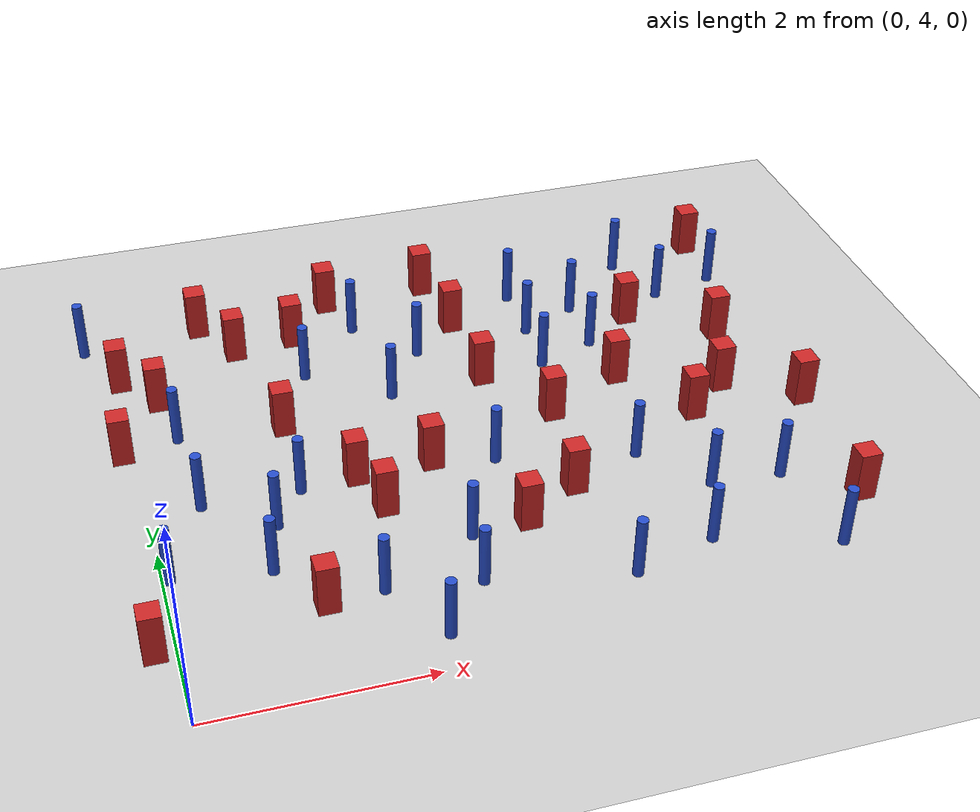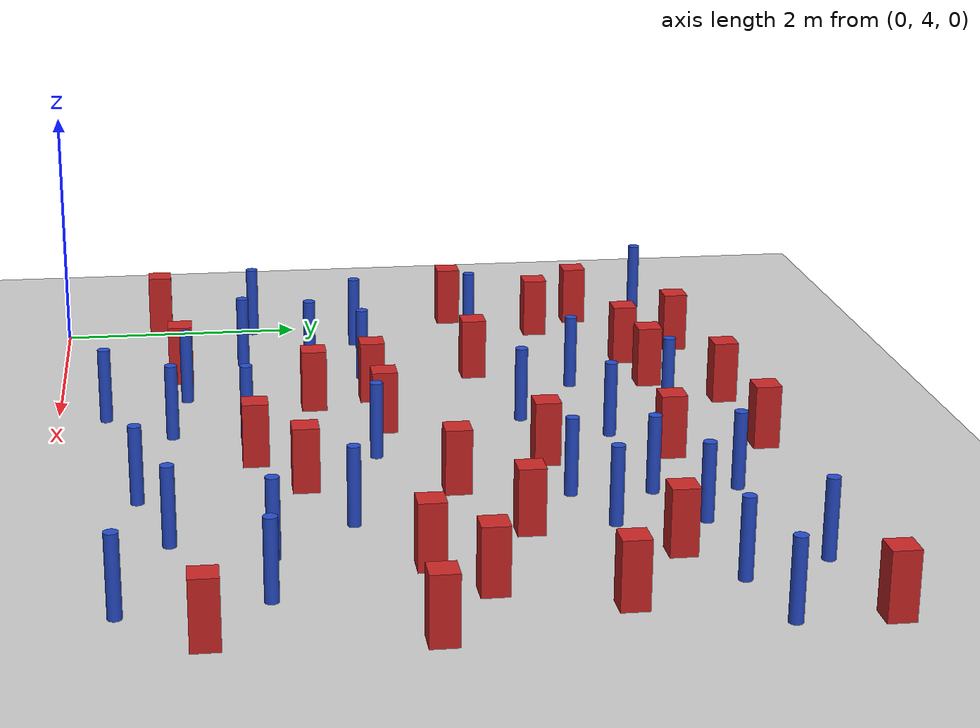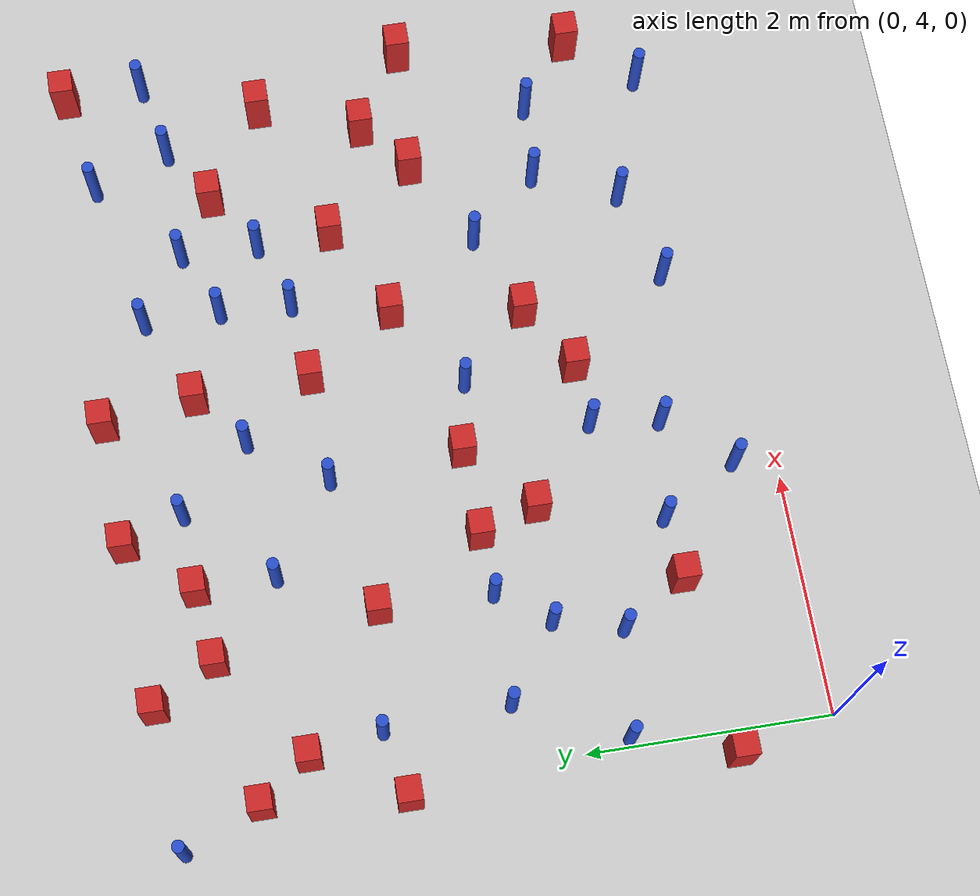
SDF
<sdf version="1.6">
 <world name="default">
  <model name="ground_plane">
   <static>1</static>
   <link name="link">
    <collision name="collision">
     <geometry><plane><normal>0 0 1</normal><size>100 100</size></plane></geometry>
     <surface><friction><ode><mu>100</mu><mu2>50</mu2></ode></friction></surface>
    </collision>
    <visual name="visual">
     <cast_shadows>0</cast_shadows>
     <geometry><plane><normal>0 0 1</normal><size>100 100</size></plane></geometry>
     <material>
      <ambient>1.0 1.0 1.0 1.0</ambient>
      <diffuse>0.8 0.8 0.8 1.0</diffuse>
      <specular>0.01 0.01 0.01 1.000000</specular>
     </material>
    </visual>
   </link>
  </model>
  <model name="pole_obstacle2">
   <static>true</static>
   <pose>4.96777169325 5.56656059829 2.88873142074e-08 -9.90536690842e-09 4.60219948965e-07 -1.20965994976e-07</pose>
   <link name="link">
    <pose>0 0 0.3 0 -0 0</pose>
    <inertial>
     <mass>1</mass>
     <inertia><ixx>0.145833</ixx><ixy>0</ixy><ixz>0</ixz><iyy>0.145833</iyy><iyz>0</iyz><izz>0.125</izz></inertia>
    </inertial>
    <collision name="collision">
     <geometry><cylinder><radius>0.05</radius><length>.6</length></cylinder></geometry>
    </collision>
    <visual name="visual">
     <geometry><cylinder><radius>0.05</radius><length>.6</length></cylinder></geometry>
     <material>
      <script><name>Gazebo/Blue</name><uri>file://media/materials/scripts/gazebo.material</uri></script>
     </material>
    </visual>
   </link>
  </model>
  <model name="pole_obstacle6">
   <static>true</static>
   <pose>1.37009122561 6.50611546226 2.88873142074e-08 -9.90536689852e-09 4.60219948989e-07 -1.2096599496e-07</pose>
   <link name="link">
    <pose>0 0 0.3 0 -0 0</pose>
    <inertial>
     <mass>1</mass>
     <inertia><ixx>0.145833</ixx><ixy>0</ixy><ixz>0</ixz><iyy>0.145833</iyy><iyz>0</iyz><izz>0.125</izz></inertia>
    </inertial>
    <collision name="collision">
     <geometry><cylinder><radius>0.05</radius><length>.6</length></cylinder></geometry>
    </collision>
    <visual name="visual">
     <geometry><cylinder><radius>0.05</radius><length>.6</length></cylinder></geometry>
     <material>
      <script><name>Gazebo/Blue</name><uri>file://media/materials/scripts/gazebo.material</uri></script>
     </material>
    </visual>
   </link>
  </model>
  <model name="square_post_obstacle16">
   <static>true</static>
   <pose>3.91685369579 6.9639876529 8.22691968438e-08 7.2212513382e-06 -7.54495500217e-07 2.29674213826e-05</pose>
   <link name="link">
    <pose>0 0 0.25 0 -0 0</pose>
    <inertial>
     <mass>100</mass>
     <inertia>
      <ixx>0.166667</ixx>
      <ixy>0</ixy>
      <ixz>0</ixz>
      <iyy>0.166667</iyy>
      <iyz>0</iyz>
      <izz>0.166667</izz>
     </inertia>
    </inertial>
    <collision name="collision"><geometry><box><size>.2 .2 .5</size></box></geometry></collision>
    <visual name="visual">
     <geometry><box><size>.2 .2 .5</size></box></geometry>
     <material>
      <script><name>Gazebo/Red</name><uri>file://media/materials/scripts/gazebo.material</uri></script>
     </material>
    </visual>
   </link>
  </model>
  <model name="square_post_obstacle23">
   <static>true</static>
   <pose>-0.119241990088 7.42786433409 8.22691968438e-08 7.2212513382e-06 -7.54495500217e-07 2.29674213826e-05</pose>
   <link name="link">
    <pose>0 0 0.25 0 -0 0</pose>
    <inertial>
     <mass>100</mass>
     <inertia>
      <ixx>0.166667</ixx>
      <ixy>0</ixy>
      <ixz>0</ixz>
      <iyy>0.166667</iyy>
      <iyz>0</iyz>
      <izz>0.166667</izz>
     </inertia>
    </inertial>
    <collision name="collision"><geometry><box><size>.2 .2 .5</size></box></geometry></collision>
    <visual name="visual">
     <geometry><box><size>.2 .2 .5</size></box></geometry>
     <material>
      <script><name>Gazebo/Red</name><uri>file://media/materials/scripts/gazebo.material</uri></script>
     </material>
    </visual>
   </link>
  </model>
  <model name="square_post_obstacle30">
   <static>true</static>
   <pose>1.39671716725 7.4428114507 8.22691968438e-08 7.2212513382e-06 -7.54495500217e-07 2.29674213826e-05</pose>
   <link name="link">
    <pose>0 0 0.25 0 -0 0</pose>
    <inertial>
     <mass>100</mass>
     <inertia>
      <ixx>0.166667</ixx>
      <ixy>0</ixy>
      <ixz>0</ixz>
      <iyy>0.166667</iyy>
      <iyz>0</iyz>
      <izz>0.166667</izz>
     </inertia>
    </inertial>
    <collision name="collision"><geometry><box><size>.2 .2 .5</size></box></geometry></collision>
    <visual name="visual">
     <geometry><box><size>.2 .2 .5</size></box></geometry>
     <material>
      <script><name>Gazebo/Red</name><uri>file://media/materials/scripts/gazebo.material</uri></script>
     </material>
    </visual>
   </link>
  </model>
  <model name="pole_obstacle25">
   <static>true</static>
   <pose>6.31843036525 8.79264927936 2.88873142074e-08 -9.9053668967e-09 4.60219948993e-07 -1.20965994957e-07</pose>
   <link name="link">
    <pose>0 0 0.3 0 -0 0</pose>
    <inertial>
     <mass>1</mass>
     <inertia><ixx>0.145833</ixx><ixy>0</ixy><ixz>0</ixz><iyy>0.145833</iyy><iyz>0</iyz><izz>0.125</izz></inertia>
    </inertial>
    <collision name="collision">
     <geometry><cylinder><radius>0.05</radius><length>.6</length></cylinder></geometry>
    </collision>
    <visual name="visual">
     <geometry><cylinder><radius>0.05</radius><length>.6</length></cylinder></geometry>
     <material>
      <script><name>Gazebo/Blue</name><uri>file://media/materials/scripts/gazebo.material</uri></script>
     </material>
    </visual>
   </link>
  </model>
  <model name="pole_obstacle26">
   <static>true</static>
   <pose>2.16247874129 4.37946165837 2.88873142074e-08 -9.90536689859e-09 4.60219948989e-07 -1.20965994961e-07</pose>
   <link name="link">
    <pose>0 0 0.3 0 -0 0</pose>
    <inertial>
     <mass>1</mass>
     <inertia><ixx>0.145833</ixx><ixy>0</ixy><ixz>0</ixz><iyy>0.145833</iyy><iyz>0</iyz><izz>0.125</izz></inertia>
    </inertial>
    <collision name="collision">
     <geometry><cylinder><radius>0.05</radius><length>.6</length></cylinder></geometry>
    </collision>
    <visual name="visual">
     <geometry><cylinder><radius>0.05</radius><length>.6</length></cylinder></geometry>
     <material>
      <script><name>Gazebo/Blue</name><uri>file://media/materials/scripts/gazebo.material</uri></script>
     </material>
    </visual>
   </link>
  </model>
  <model name="pole_obstacle29">
   <static>true</static>
   <pose>0.925909706699 5.52010803159 2.88873142074e-08 -9.90536689661e-09 4.60219948993e-07 -1.20965994957e-07</pose>
   <link name="link">
    <pose>0 0 0.3 0 -0 0</pose>
    <inertial>
     <mass>1</mass>
     <inertia><ixx>0.145833</ixx><ixy>0</ixy><ixz>0</ixz><iyy>0.145833</iyy><iyz>0</iyz><izz>0.125</izz></inertia>
    </inertial>
    <collision name="collision">
     <geometry><cylinder><radius>0.05</radius><length>.6</length></cylinder></geometry>
    </collision>
    <visual name="visual">
     <geometry><cylinder><radius>0.05</radius><length>.6</length></cylinder></geometry>
     <material>
      <script><name>Gazebo/Blue</name><uri>file://media/materials/scripts/gazebo.material</uri></script>
     </material>
    </visual>
   </link>
  </model>
  <model name="pole_obstacle35">
   <static>true</static>
   <pose>4.67556198514 7.98882121577 2.88873142074e-08 -9.90536689847e-09 4.60219948989e-07 -1.2096599496e-07</pose>
   <link name="link">
    <pose>0 0 0.3 0 -0 0</pose>
    <inertial>
     <mass>1</mass>
     <inertia><ixx>0.145833</ixx><ixy>0</ixy><ixz>0</ixz><iyy>0.145833</iyy><iyz>0</iyz><izz>0.125</izz></inertia>
    </inertial>
    <collision name="collision">
     <geometry><cylinder><radius>0.05</radius><length>.6</length></cylinder></geometry>
    </collision>
    <visual name="visual">
     <geometry><cylinder><radius>0.05</radius><length>.6</length></cylinder></geometry>
     <material>
      <script><name>Gazebo/Blue</name><uri>file://media/materials/scripts/gazebo.material</uri></script>
     </material>
    </visual>
   </link>
  </model>
  <model name="square_post_obstacle41">
   <static>true</static>
   <pose>3.20217544538 5.52495543636 8.22691968438e-08 7.2212513382e-06 -7.54495500217e-07 2.29674213826e-05</pose>
   <link name="link">
    <pose>0 0 0.25 0 -0 0</pose>
    <inertial>
     <mass>100</mass>
     <inertia>
      <ixx>0.166667</ixx>
      <ixy>0</ixy>
      <ixz>0</ixz>
      <iyy>0.166667</iyy>
      <iyz>0</iyz>
      <izz>0.166667</izz>
     </inertia>
    </inertial>
    <collision name="collision"><geometry><box><size>.2 .2 .5</size></box></geometry></collision>
    <visual name="visual">
     <geometry><box><size>.2 .2 .5</size></box></geometry>
     <material>
      <script><name>Gazebo/Red</name><uri>file://media/materials/scripts/gazebo.material</uri></script>
     </material>
    </visual>
   </link>
  </model>
  <model name="pole_obstacle46">
   <static>true</static>
   <pose>4.67450570438 4.86793029133 2.88873142074e-08 -9.90536690842e-09 4.60219948965e-07 -1.20965994976e-07</pose>
   <link name="link">
    <pose>0 0 0.3 0 -0 0</pose>
    <inertial>
     <mass>1</mass>
     <inertia><ixx>0.145833</ixx><ixy>0</ixy><ixz>0</ixz><iyy>0.145833</iyy><iyz>0</iyz><izz>0.125</izz></inertia>
    </inertial>
    <collision name="collision">
     <geometry><cylinder><radius>0.05</radius><length>.6</length></cylinder></geometry>
    </collision>
    <visual name="visual">
     <geometry><cylinder><radius>0.05</radius><length>.6</length></cylinder></geometry>
     <material>
      <script><name>Gazebo/Blue</name><uri>file://media/materials/scripts/gazebo.material</uri></script>
     </material>
    </visual>
   </link>
  </model>
  <model name="square_post_obstacle56">
   <static>true</static>
   <pose>5.9652796475 7.8160864551 8.22691968438e-08 7.2212513382e-06 -7.54495500217e-07 2.29674213826e-05</pose>
   <link name="link">
    <pose>0 0 0.25 0 -0 0</pose>
    <inertial>
     <mass>100</mass>
     <inertia>
      <ixx>0.166667</ixx>
      <ixy>0</ixy>
      <ixz>0</ixz>
      <iyy>0.166667</iyy>
      <iyz>0</iyz>
      <izz>0.166667</izz>
     </inertia>
    </inertial>
    <collision name="collision"><geometry><box><size>.2 .2 .5</size></box></geometry></collision>
    <visual name="visual">
     <geometry><box><size>.2 .2 .5</size></box></geometry>
     <material>
      <script><name>Gazebo/Red</name><uri>file://media/materials/scripts/gazebo.material</uri></script>
     </material>
    </visual>
   </link>
  </model>
  <model name="square_post_obstacle59">
   <static>true</static>
   <pose>6.31957175698 6.54099448816 8.22691968438e-08 7.2212513382e-06 -7.54495500217e-07 2.29674213826e-05</pose>
   <link name="link">
    <pose>0 0 0.25 0 -0 0</pose>
    <inertial>
     <mass>100</mass>
     <inertia>
      <ixx>0.166667</ixx>
      <ixy>0</ixy>
      <ixz>0</ixz>
      <iyy>0.166667</iyy>
      <iyz>0</iyz>
      <izz>0.166667</izz>
     </inertia>
    </inertial>
    <collision name="collision"><geometry><box><size>.2 .2 .5</size></box></geometry></collision>
    <visual name="visual">
     <geometry><box><size>.2 .2 .5</size></box></geometry>
     <material>
      <script><name>Gazebo/Red</name><uri>file://media/materials/scripts/gazebo.material</uri></script>
     </material>
    </visual>
   </link>
  </model>
  <model name="square_post_obstacle62">
   <static>true</static>
   <pose>6.20117681031 5.0781261806 8.22691968438e-08 7.2212513382e-06 -7.54495500217e-07 2.29674213826e-05</pose>
   <link name="link">
    <pose>0 0 0.25 0 -0 0</pose>
    <inertial>
     <mass>100</mass>
     <inertia>
      <ixx>0.166667</ixx>
      <ixy>0</ixy>
      <ixz>0</ixz>
      <iyy>0.166667</iyy>
      <iyz>0</iyz>
      <izz>0.166667</izz>
     </inertia>
    </inertial>
    <collision name="collision"><geometry><box><size>.2 .2 .5</size></box></geometry></collision>
    <visual name="visual">
     <geometry><box><size>.2 .2 .5</size></box></geometry>
     <material>
      <script><name>Gazebo/Red</name><uri>file://media/materials/scripts/gazebo.material</uri></script>
     </material>
    </visual>
   </link>
  </model>
  <model name="pole_obstacle62">
   <static>true</static>
   <pose>2.60793755415 4.90493422945 2.88873142074e-08 -9.90536689859e-09 4.60219948989e-07 -1.20965994961e-07</pose>
   <link name="link">
    <pose>0 0 0.3 0 -0 0</pose>
    <inertial>
     <mass>1</mass>
     <inertia><ixx>0.145833</ixx><ixy>0</ixy><ixz>0</ixz><iyy>0.145833</iyy><iyz>0</iyz><izz>0.125</izz></inertia>
    </inertial>
    <collision name="collision">
     <geometry><cylinder><radius>0.05</radius><length>.6</length></cylinder></geometry>
    </collision>
    <visual name="visual">
     <geometry><cylinder><radius>0.05</radius><length>.6</length></cylinder></geometry>
     <material>
      <script><name>Gazebo/Blue</name><uri>file://media/materials/scripts/gazebo.material</uri></script>
     </material>
    </visual>
   </link>
  </model>
  <model name="pole_obstacle64">
   <static>true</static>
   <pose>1.77934409455 5.02968910022 2.88873142074e-08 -9.90536689852e-09 4.60219948989e-07 -1.2096599496e-07</pose>
   <link name="link">
    <pose>0 0 0.3 0 -0 0</pose>
    <inertial>
     <mass>1</mass>
     <inertia><ixx>0.145833</ixx><ixy>0</ixy><ixz>0</ixz><iyy>0.145833</iyy><iyz>0</iyz><izz>0.125</izz></inertia>
    </inertial>
    <collision name="collision">
     <geometry><cylinder><radius>0.05</radius><length>.6</length></cylinder></geometry>
    </collision>
    <visual name="visual">
     <geometry><cylinder><radius>0.05</radius><length>.6</length></cylinder></geometry>
     <material>
      <script><name>Gazebo/Blue</name><uri>file://media/materials/scripts/gazebo.material</uri></script>
     </material>
    </visual>
   </link>
  </model>
  <model name="pole_obstacle75">
   <static>true</static>
   <pose>0.409155616379 7.55330018496 2.88873142074e-08 -9.90536689683e-09 4.60219948993e-07 -1.20965994957e-07</pose>
   <link name="link">
    <pose>0 0 0.3 0 -0 0</pose>
    <inertial>
     <mass>1</mass>
     <inertia><ixx>0.145833</ixx><ixy>0</ixy><ixz>0</ixz><iyy>0.145833</iyy><iyz>0</iyz><izz>0.125</izz></inertia>
    </inertial>
    <collision name="collision">
     <geometry><cylinder><radius>0.05</radius><length>.6</length></cylinder></geometry>
    </collision>
    <visual name="visual">
     <geometry><cylinder><radius>0.05</radius><length>.6</length></cylinder></geometry>
     <material>
      <script><name>Gazebo/Blue</name><uri>file://media/materials/scripts/gazebo.material</uri></script>
     </material>
    </visual>
   </link>
  </model>
  <model name="pole_obstacle77">
   <static>true</static>
   <pose>2.94382938815 8.30814812431 2.88873142074e-08 -9.90536692318e-09 4.6021994893e-07 -1.20965994988e-07</pose>
   <link name="link">
    <pose>0 0 0.3 0 -0 0</pose>
    <inertial>
     <mass>1</mass>
     <inertia><ixx>0.145833</ixx><ixy>0</ixy><ixz>0</ixz><iyy>0.145833</iyy><iyz>0</iyz><izz>0.125</izz></inertia>
    </inertial>
    <collision name="collision">
     <geometry><cylinder><radius>0.05</radius><length>.6</length></cylinder></geometry>
    </collision>
    <visual name="visual">
     <geometry><cylinder><radius>0.05</radius><length>.6</length></cylinder></geometry>
     <material>
      <script><name>Gazebo/Blue</name><uri>file://media/materials/scripts/gazebo.material</uri></script>
     </material>
    </visual>
   </link>
  </model>
  <model name="pole_obstacle86">
   <static>true</static>
   <pose>5.41949623165 9.29443097916 2.88873142074e-08 -9.9053668967e-09 4.60219948993e-07 -1.20965994957e-07</pose>
   <link name="link">
    <pose>0 0 0.3 0 -0 0</pose>
    <inertial>
     <mass>1</mass>
     <inertia><ixx>0.145833</ixx><ixy>0</ixy><ixz>0</ixz><iyy>0.145833</iyy><iyz>0</iyz><izz>0.125</izz></inertia>
    </inertial>
    <collision name="collision">
     <geometry><cylinder><radius>0.05</radius><length>.6</length></cylinder></geometry>
    </collision>
    <visual name="visual">
     <geometry><cylinder><radius>0.05</radius><length>.6</length></cylinder></geometry>
     <material>
      <script><name>Gazebo/Blue</name><uri>file://media/materials/scripts/gazebo.material</uri></script>
     </material>
    </visual>
   </link>
  </model>
  <model name="pole_obstacle98">
   <static>true</static>
   <pose>4.09726221387 7.77660372069 2.88873142074e-08 -9.90536690842e-09 4.60219948965e-07 -1.20965994976e-07</pose>
   <link name="link">
    <pose>0 0 0.3 0 -0 0</pose>
    <inertial>
     <mass>1</mass>
     <inertia><ixx>0.145833</ixx><ixy>0</ixy><ixz>0</ixz><iyy>0.145833</iyy><iyz>0</iyz><izz>0.125</izz></inertia>
    </inertial>
    <collision name="collision">
     <geometry><cylinder><radius>0.05</radius><length>.6</length></cylinder></geometry>
    </collision>
    <visual name="visual">
     <geometry><cylinder><radius>0.05</radius><length>.6</length></cylinder></geometry>
     <material>
      <script><name>Gazebo/Blue</name><uri>file://media/materials/scripts/gazebo.material</uri></script>
     </material>
    </visual>
   </link>
  </model>
  <model name="pole_obstacle100">
   <static>true</static>
   <pose>0.0596505461346 5.63868750948 2.88873142074e-08 -9.90536689796e-09 4.6021994899e-07 -1.20965994961e-07</pose>
   <link name="link">
    <pose>0 0 0.3 0 -0 0</pose>
    <inertial>
     <mass>1</mass>
     <inertia><ixx>0.145833</ixx><ixy>0</ixy><ixz>0</ixz><iyy>0.145833</iyy><iyz>0</iyz><izz>0.125</izz></inertia>
    </inertial>
    <collision name="collision">
     <geometry><cylinder><radius>0.05</radius><length>.6</length></cylinder></geometry>
    </collision>
    <visual name="visual">
     <geometry><cylinder><radius>0.05</radius><length>.6</length></cylinder></geometry>
     <material>
      <script><name>Gazebo/Blue</name><uri>file://media/materials/scripts/gazebo.material</uri></script>
     </material>
    </visual>
   </link>
  </model>
  <model name="square_post_obstacle88">
   <static>true</static>
   <pose>3.39963861585 8.68336751321 8.22691968438e-08 7.22125133819e-06 -7.54495500217e-07 2.29674213826e-05</pose>
   <link name="link">
    <pose>0 0 0.25 0 -0 0</pose>
    <inertial>
     <mass>100</mass>
     <inertia>
      <ixx>0.166667</ixx>
      <ixy>0</ixy>
      <ixz>0</ixz>
      <iyy>0.166667</iyy>
      <iyz>0</iyz>
      <izz>0.166667</izz>
     </inertia>
    </inertial>
    <collision name="collision"><geometry><box><size>.2 .2 .5</size></box></geometry></collision>
    <visual name="visual">
     <geometry><box><size>.2 .2 .5</size></box></geometry>
     <material>
      <script><name>Gazebo/Red</name><uri>file://media/materials/scripts/gazebo.material</uri></script>
     </material>
    </visual>
   </link>
  </model>
  <model name="pole_obstacle106">
   <static>true</static>
   <pose>2.67788196764 5.48253154245 2.88873142074e-08 -9.90536689859e-09 4.60219948989e-07 -1.20965994961e-07</pose>
   <link name="link">
    <pose>0 0 0.3 0 -0 0</pose>
    <inertial>
     <mass>1</mass>
     <inertia><ixx>0.145833</ixx><ixy>0</ixy><ixz>0</ixz><iyy>0.145833</iyy><iyz>0</iyz><izz>0.125</izz></inertia>
    </inertial>
    <collision name="collision">
     <geometry><cylinder><radius>0.05</radius><length>.6</length></cylinder></geometry>
    </collision>
    <visual name="visual">
     <geometry><cylinder><radius>0.05</radius><length>.6</length></cylinder></geometry>
     <material>
      <script><name>Gazebo/Blue</name><uri>file://media/materials/scripts/gazebo.material</uri></script>
     </material>
    </visual>
   </link>
  </model>
  <model name="square_post_obstacle94">
   <static>true</static>
   <pose>1.77341776017 8.87125788749 8.22691968438e-08 7.22125133819e-06 -7.54495500217e-07 2.29674213826e-05</pose>
   <link name="link">
    <pose>0 0 0.25 0 -0 0</pose>
    <inertial>
     <mass>100</mass>
     <inertia>
      <ixx>0.166667</ixx>
      <ixy>0</ixy>
      <ixz>0</ixz>
      <iyy>0.166667</iyy>
      <iyz>0</iyz>
      <izz>0.166667</izz>
     </inertia>
    </inertial>
    <collision name="collision"><geometry><box><size>.2 .2 .5</size></box></geometry></collision>
    <visual name="visual">
     <geometry><box><size>.2 .2 .5</size></box></geometry>
     <material>
      <script><name>Gazebo/Red</name><uri>file://media/materials/scripts/gazebo.material</uri></script>
     </material>
    </visual>
   </link>
  </model>
  <model name="pole_obstacle110">
   <static>true</static>
   <pose>5.75345710908 4.51590251149 2.88873142074e-08 -9.90536690842e-09 4.60219948965e-07 -1.20965994976e-07</pose>
   <link name="link">
    <pose>0 0 0.3 0 -0 0</pose>
    <inertial>
     <mass>1</mass>
     <inertia><ixx>0.145833</ixx><ixy>0</ixy><ixz>0</ixz><iyy>0.145833</iyy><iyz>0</iyz><izz>0.125</izz></inertia>
    </inertial>
    <collision name="collision">
     <geometry><cylinder><radius>0.05</radius><length>.6</length></cylinder></geometry>
    </collision>
    <visual name="visual">
     <geometry><cylinder><radius>0.05</radius><length>.6</length></cylinder></geometry>
     <material>
      <script><name>Gazebo/Blue</name><uri>file://media/materials/scripts/gazebo.material</uri></script>
     </material>
    </visual>
   </link>
  </model>
  <model name="square_post_obstacle112">
   <static>true</static>
   <pose>2.2299961319 9.39768226492 8.22691968438e-08 7.22125133819e-06 -7.54495500217e-07 2.29674213826e-05</pose>
   <link name="link">
    <pose>0 0 0.25 0 -0 0</pose>
    <inertial>
     <mass>100</mass>
     <inertia>
      <ixx>0.166667</ixx>
      <ixy>0</ixy>
      <ixz>0</ixz>
      <iyy>0.166667</iyy>
      <iyz>0</iyz>
      <izz>0.166667</izz>
     </inertia>
    </inertial>
    <collision name="collision"><geometry><box><size>.2 .2 .5</size></box></geometry></collision>
    <visual name="visual">
     <geometry><box><size>.2 .2 .5</size></box></geometry>
     <material>
      <script><name>Gazebo/Red</name><uri>file://media/materials/scripts/gazebo.material</uri></script>
     </material>
    </visual>
   </link>
  </model>
  <model name="pole_obstacle121">
   <static>true</static>
   <pose>5.62723951667 5.51931022802 2.88873142074e-08 -9.90536690842e-09 4.60219948965e-07 -1.20965994976e-07</pose>
   <link name="link">
    <pose>0 0 0.3 0 -0 0</pose>
    <inertial>
     <mass>1</mass>
     <inertia><ixx>0.145833</ixx><ixy>0</ixy><ixz>0</ixz><iyy>0.145833</iyy><iyz>0</iyz><izz>0.125</izz></inertia>
    </inertial>
    <collision name="collision">
     <geometry><cylinder><radius>0.05</radius><length>.6</length></cylinder></geometry>
    </collision>
    <visual name="visual">
     <geometry><cylinder><radius>0.05</radius><length>.6</length></cylinder></geometry>
     <material>
      <script><name>Gazebo/Blue</name><uri>file://media/materials/scripts/gazebo.material</uri></script>
     </material>
    </visual>
   </link>
  </model>
  <model name="pole_obstacle128">
   <static>true</static>
   <pose>1.7696042721 8.216607884 2.88873142074e-08 -9.90536690474e-09 4.60219948974e-07 -1.2096599497e-07</pose>
   <link name="link">
    <pose>0 0 0.3 0 -0 0</pose>
    <inertial>
     <mass>1</mass>
     <inertia><ixx>0.145833</ixx><ixy>0</ixy><ixz>0</ixz><iyy>0.145833</iyy><iyz>0</iyz><izz>0.125</izz></inertia>
    </inertial>
    <collision name="collision">
     <geometry><cylinder><radius>0.05</radius><length>.6</length></cylinder></geometry>
    </collision>
    <visual name="visual">
     <geometry><cylinder><radius>0.05</radius><length>.6</length></cylinder></geometry>
     <material>
      <script><name>Gazebo/Blue</name><uri>file://media/materials/scripts/gazebo.material</uri></script>
     </material>
    </visual>
   </link>
  </model>
  <model name="pole_obstacle129">
   <static>true</static>
   <pose>0.465698473149 6.5179072156 2.88873142074e-08 -9.90536689616e-09 4.60219948994e-07 -1.20965994955e-07</pose>
   <link name="link">
    <pose>0 0 0.3 0 -0 0</pose>
    <inertial>
     <mass>1</mass>
     <inertia><ixx>0.145833</ixx><ixy>0</ixy><ixz>0</ixz><iyy>0.145833</iyy><iyz>0</iyz><izz>0.125</izz></inertia>
    </inertial>
    <collision name="collision">
     <geometry><cylinder><radius>0.05</radius><length>.6</length></cylinder></geometry>
    </collision>
    <visual name="visual">
     <geometry><cylinder><radius>0.05</radius><length>.6</length></cylinder></geometry>
     <material>
      <script><name>Gazebo/Blue</name><uri>file://media/materials/scripts/gazebo.material</uri></script>
     </material>
    </visual>
   </link>
  </model>
  <model name="square_post_obstacle115">
   <static>true</static>
   <pose>5.64836257983 6.96333890135 8.22691968438e-08 7.2212513382e-06 -7.54495500217e-07 2.29674213826e-05</pose>
   <link name="link">
    <pose>0 0 0.25 0 -0 0</pose>
    <inertial>
     <mass>100</mass>
     <inertia>
      <ixx>0.166667</ixx>
      <ixy>0</ixy>
      <ixz>0</ixz>
      <iyy>0.166667</iyy>
      <iyz>0</iyz>
      <izz>0.166667</izz>
     </inertia>
    </inertial>
    <collision name="collision"><geometry><box><size>.2 .2 .5</size></box></geometry></collision>
    <visual name="visual">
     <geometry><box><size>.2 .2 .5</size></box></geometry>
     <material>
      <script><name>Gazebo/Red</name><uri>file://media/materials/scripts/gazebo.material</uri></script>
     </material>
    </visual>
   </link>
  </model>
  <model name="pole_obstacle135">
   <static>true</static>
   <pose>5.66528260369 8.64771750167 2.88873142074e-08 -9.9053668967e-09 4.60219948993e-07 -1.20965994957e-07</pose>
   <link name="link">
    <pose>0 0 0.3 0 -0 0</pose>
    <inertial>
     <mass>1</mass>
     <inertia><ixx>0.145833</ixx><ixy>0</ixy><ixz>0</ixz><iyy>0.145833</iyy><iyz>0</iyz><izz>0.125</izz></inertia>
    </inertial>
    <collision name="collision">
     <geometry><cylinder><radius>0.05</radius><length>.6</length></cylinder></geometry>
    </collision>
    <visual name="visual">
     <geometry><cylinder><radius>0.05</radius><length>.6</length></cylinder></geometry>
     <material>
      <script><name>Gazebo/Blue</name><uri>file://media/materials/scripts/gazebo.material</uri></script>
     </material>
    </visual>
   </link>
  </model>
  <model name="pole_obstacle138">
   <static>true</static>
   <pose>4.68991353894 8.63849481788 2.88873142074e-08 -9.9053668967e-09 4.60219948993e-07 -1.20965994957e-07</pose>
   <link name="link">
    <pose>0 0 0.3 0 -0 0</pose>
    <inertial>
     <mass>1</mass>
     <inertia><ixx>0.145833</ixx><ixy>0</ixy><ixz>0</ixz><iyy>0.145833</iyy><iyz>0</iyz><izz>0.125</izz></inertia>
    </inertial>
    <collision name="collision">
     <geometry><cylinder><radius>0.05</radius><length>.6</length></cylinder></geometry>
    </collision>
    <visual name="visual">
     <geometry><cylinder><radius>0.05</radius><length>.6</length></cylinder></geometry>
     <material>
      <script><name>Gazebo/Blue</name><uri>file://media/materials/scripts/gazebo.material</uri></script>
     </material>
    </visual>
   </link>
  </model>
  <model name="square_post_obstacle120">
   <static>true</static>
   <pose>0.309496808267 8.15601088253 8.22691968438e-08 7.22125133819e-06 -7.54495500217e-07 2.29674213826e-05</pose>
   <link name="link">
    <pose>0 0 0.25 0 -0 0</pose>
    <inertial>
     <mass>100</mass>
     <inertia>
      <ixx>0.166667</ixx>
      <ixy>0</ixy>
      <ixz>0</ixz>
      <iyy>0.166667</iyy>
      <iyz>0</iyz>
      <izz>0.166667</izz>
     </inertia>
    </inertial>
    <collision name="collision"><geometry><box><size>.2 .2 .5</size></box></geometry></collision>
    <visual name="visual">
     <geometry><box><size>.2 .2 .5</size></box></geometry>
     <material>
      <script><name>Gazebo/Red</name><uri>file://media/materials/scripts/gazebo.material</uri></script>
     </material>
    </visual>
   </link>
  </model>
  <model name="square_post_obstacle121">
   <static>true</static>
   <pose>2.60695842723 6.56254834918 8.22691968438e-08 7.2212513382e-06 -7.54495500217e-07 2.29674213826e-05</pose>
   <link name="link">
    <pose>0 0 0.25 0 -0 0</pose>
    <inertial>
     <mass>100</mass>
     <inertia>
      <ixx>0.166667</ixx>
      <ixy>0</ixy>
      <ixz>0</ixz>
      <iyy>0.166667</iyy>
      <iyz>0</iyz>
      <izz>0.166667</izz>
     </inertia>
    </inertial>
    <collision name="collision"><geometry><box><size>.2 .2 .5</size></box></geometry></collision>
    <visual name="visual">
     <geometry><box><size>.2 .2 .5</size></box></geometry>
     <material>
      <script><name>Gazebo/Red</name><uri>file://media/materials/scripts/gazebo.material</uri></script>
     </material>
    </visual>
   </link>
  </model>
  <model name="square_post_obstacle131">
   <static>true</static>
   <pose>3.75283285673 5.86658564007 8.22691968438e-08 7.2212513382e-06 -7.54495500217e-07 2.29674213826e-05</pose>
   <link name="link">
    <pose>0 0 0.25 0 -0 0</pose>
    <inertial>
     <mass>100</mass>
     <inertia>
      <ixx>0.166667</ixx>
      <ixy>0</ixy>
      <ixz>0</ixz>
      <iyy>0.166667</iyy>
      <iyz>0</iyz>
      <izz>0.166667</izz>
     </inertia>
    </inertial>
    <collision name="collision"><geometry><box><size>.2 .2 .5</size></box></geometry></collision>
    <visual name="visual">
     <geometry><box><size>.2 .2 .5</size></box></geometry>
     <material>
      <script><name>Gazebo/Red</name><uri>file://media/materials/scripts/gazebo.material</uri></script>
     </material>
    </visual>
   </link>
  </model>
  <model name="pole_obstacle145">
   <static>true</static>
   <pose>4.12500622428 8.37908845964 2.88873142074e-08 -9.9053668967e-09 4.60219948993e-07 -1.20965994957e-07</pose>
   <link name="link">
    <pose>0 0 0.3 0 -0 0</pose>
    <inertial>
     <mass>1</mass>
     <inertia><ixx>0.145833</ixx><ixy>0</ixy><ixz>0</ixz><iyy>0.145833</iyy><iyz>0</iyz><izz>0.125</izz></inertia>
    </inertial>
    <collision name="collision">
     <geometry><cylinder><radius>0.05</radius><length>.6</length></cylinder></geometry>
    </collision>
    <visual name="visual">
     <geometry><cylinder><radius>0.05</radius><length>.6</length></cylinder></geometry>
     <material>
      <script><name>Gazebo/Blue</name><uri>file://media/materials/scripts/gazebo.material</uri></script>
     </material>
    </visual>
   </link>
  </model>
  <model name="pole_obstacle156">
   <static>true</static>
   <pose>1.06971185165 6.08281746046 2.88873142074e-08 -9.90536689852e-09 4.60219948989e-07 -1.2096599496e-07</pose>
   <link name="link">
    <pose>0 0 0.3 0 -0 0</pose>
    <inertial>
     <mass>1</mass>
     <inertia><ixx>0.145833</ixx><ixy>0</ixy><ixz>0</ixz><iyy>0.145833</iyy><iyz>0</iyz><izz>0.125</izz></inertia>
    </inertial>
    <collision name="collision">
     <geometry><cylinder><radius>0.05</radius><length>.6</length></cylinder></geometry>
    </collision>
    <visual name="visual">
     <geometry><cylinder><radius>0.05</radius><length>.6</length></cylinder></geometry>
     <material>
      <script><name>Gazebo/Blue</name><uri>file://media/materials/scripts/gazebo.material</uri></script>
     </material>
    </visual>
   </link>
  </model>
  <model name="square_post_obstacle149">
   <static>true</static>
   <pose>-0.180372164888 4.8177123652 8.22691968438e-08 7.22125133819e-06 -7.54495500217e-07 2.29674213826e-05</pose>
   <link name="link">
    <pose>0 0 0.25 0 -0 0</pose>
    <inertial>
     <mass>100</mass>
     <inertia>
      <ixx>0.166667</ixx>
      <ixy>0</ixy>
      <ixz>0</ixz>
      <iyy>0.166667</iyy>
      <iyz>0</iyz>
      <izz>0.166667</izz>
     </inertia>
    </inertial>
    <collision name="collision"><geometry><box><size>.2 .2 .5</size></box></geometry></collision>
    <visual name="visual">
     <geometry><box><size>.2 .2 .5</size></box></geometry>
     <material>
      <script><name>Gazebo/Red</name><uri>file://media/materials/scripts/gazebo.material</uri></script>
     </material>
    </visual>
   </link>
  </model>
  <model name="square_post_obstacle151">
   <static>true</static>
   <pose>1.17205428609 8.79064866969 8.22691968438e-08 7.22125133819e-06 -7.54495500217e-07 2.29674213826e-05</pose>
   <link name="link">
    <pose>0 0 0.25 0 -0 0</pose>
    <inertial>
     <mass>100</mass>
     <inertia>
      <ixx>0.166667</ixx>
      <ixy>0</ixy>
      <ixz>0</ixz>
      <iyy>0.166667</iyy>
      <iyz>0</iyz>
      <izz>0.166667</izz>
     </inertia>
    </inertial>
    <collision name="collision"><geometry><box><size>.2 .2 .5</size></box></geometry></collision>
    <visual name="visual">
     <geometry><box><size>.2 .2 .5</size></box></geometry>
     <material>
      <script><name>Gazebo/Red</name><uri>file://media/materials/scripts/gazebo.material</uri></script>
     </material>
    </visual>
   </link>
  </model>
  <model name="square_post_obstacle152">
   <static>true</static>
   <pose>4.7091442043 7.36499155765 8.22691968438e-08 7.2212513382e-06 -7.54495500217e-07 2.29674213826e-05</pose>
   <link name="link">
    <pose>0 0 0.25 0 -0 0</pose>
    <inertial>
     <mass>100</mass>
     <inertia>
      <ixx>0.166667</ixx>
      <ixy>0</ixy>
      <ixz>0</ixz>
      <iyy>0.166667</iyy>
      <iyz>0</iyz>
      <izz>0.166667</izz>
     </inertia>
    </inertial>
    <collision name="collision"><geometry><box><size>.2 .2 .5</size></box></geometry></collision>
    <visual name="visual">
     <geometry><box><size>.2 .2 .5</size></box></geometry>
     <material>
      <script><name>Gazebo/Red</name><uri>file://media/materials/scripts/gazebo.material</uri></script>
     </material>
    </visual>
   </link>
  </model>
  <model name="square_post_obstacle154">
   <static>true</static>
   <pose>3.43636410579 7.70810147006 8.22691968438e-08 7.2212513382e-06 -7.54495500217e-07 2.29674213826e-05</pose>
   <link name="link">
    <pose>0 0 0.25 0 -0 0</pose>
    <inertial>
     <mass>100</mass>
     <inertia>
      <ixx>0.166667</ixx>
      <ixy>0</ixy>
      <ixz>0</ixz>
      <iyy>0.166667</iyy>
      <iyz>0</iyz>
      <izz>0.166667</izz>
     </inertia>
    </inertial>
    <collision name="collision"><geometry><box><size>.2 .2 .5</size></box></geometry></collision>
    <visual name="visual">
     <geometry><box><size>.2 .2 .5</size></box></geometry>
     <material>
      <script><name>Gazebo/Red</name><uri>file://media/materials/scripts/gazebo.material</uri></script>
     </material>
    </visual>
   </link>
  </model>
  <model name="square_post_obstacle157">
   <static>true</static>
   <pose>6.31985474727 9.45497323088 8.22691968438e-08 7.22125133819e-06 -7.54495500217e-07 2.29674213826e-05</pose>
   <link name="link">
    <pose>0 0 0.25 0 -0 0</pose>
    <inertial>
     <mass>100</mass>
     <inertia>
      <ixx>0.166667</ixx>
      <ixy>0</ixy>
      <ixz>0</ixz>
      <iyy>0.166667</iyy>
      <iyz>0</iyz>
      <izz>0.166667</izz>
     </inertia>
    </inertial>
    <collision name="collision"><geometry><box><size>.2 .2 .5</size></box></geometry></collision>
    <visual name="visual">
     <geometry><box><size>.2 .2 .5</size></box></geometry>
     <material>
      <script><name>Gazebo/Red</name><uri>file://media/materials/scripts/gazebo.material</uri></script>
     </material>
    </visual>
   </link>
  </model>
  <model name="pole_obstacle164">
   <static>true</static>
   <pose>2.51797513545 7.67339430441 2.88873142074e-08 -9.90536689859e-09 4.60219948989e-07 -1.20965994961e-07</pose>
   <link name="link">
    <pose>0 0 0.3 0 -0 0</pose>
    <inertial>
     <mass>1</mass>
     <inertia><ixx>0.145833</ixx><ixy>0</ixy><ixz>0</ixz><iyy>0.145833</iyy><iyz>0</iyz><izz>0.125</izz></inertia>
    </inertial>
    <collision name="collision">
     <geometry><cylinder><radius>0.05</radius><length>.6</length></cylinder></geometry>
    </collision>
    <visual name="visual">
     <geometry><cylinder><radius>0.05</radius><length>.6</length></cylinder></geometry>
     <material>
      <script><name>Gazebo/Blue</name><uri>file://media/materials/scripts/gazebo.material</uri></script>
     </material>
    </visual>
   </link>
  </model>
  <model name="pole_obstacle169">
   <static>true</static>
   <pose>3.19024057601 6.44593061314 2.88873142074e-08 -9.90536689859e-09 4.60219948989e-07 -1.20965994961e-07</pose>
   <link name="link">
    <pose>0 0 0.3 0 -0 0</pose>
    <inertial>
     <mass>1</mass>
     <inertia><ixx>0.145833</ixx><ixy>0</ixy><ixz>0</ixz><iyy>0.145833</iyy><iyz>0</iyz><izz>0.125</izz></inertia>
    </inertial>
    <collision name="collision">
     <geometry><cylinder><radius>0.05</radius><length>.6</length></cylinder></geometry>
    </collision>
    <visual name="visual">
     <geometry><cylinder><radius>0.05</radius><length>.6</length></cylinder></geometry>
     <material>
      <script><name>Gazebo/Blue</name><uri>file://media/materials/scripts/gazebo.material</uri></script>
     </material>
    </visual>
   </link>
  </model>
  <model name="square_post_obstacle164">
   <static>true</static>
   <pose>5.21792324533 6.60572901363 8.22691968438e-08 7.2212513382e-06 -7.54495500217e-07 2.29674213826e-05</pose>
   <link name="link">
    <pose>0 0 0.25 0 -0 0</pose>
    <inertial>
     <mass>100</mass>
     <inertia>
      <ixx>0.166667</ixx>
      <ixy>0</ixy>
      <ixz>0</ixz>
      <iyy>0.166667</iyy>
      <iyz>0</iyz>
      <izz>0.166667</izz>
     </inertia>
    </inertial>
    <collision name="collision"><geometry><box><size>.2 .2 .5</size></box></geometry></collision>
    <visual name="visual">
     <geometry><box><size>.2 .2 .5</size></box></geometry>
     <material>
      <script><name>Gazebo/Red</name><uri>file://media/materials/scripts/gazebo.material</uri></script>
     </material>
    </visual>
   </link>
  </model>
  <model name="square_post_obstacle177">
   <static>true</static>
   <pose>0.872901439396 9.30625785798 8.22691968438e-08 7.22125133819e-06 -7.54495500217e-07 2.29674213826e-05</pose>
   <link name="link">
    <pose>0 0 0.25 0 -0 0</pose>
    <inertial>
     <mass>100</mass>
     <inertia>
      <ixx>0.166667</ixx>
      <ixy>0</ixy>
      <ixz>0</ixz>
      <iyy>0.166667</iyy>
      <iyz>0</iyz>
      <izz>0.166667</izz>
     </inertia>
    </inertial>
    <collision name="collision"><geometry><box><size>.2 .2 .5</size></box></geometry></collision>
    <visual name="visual">
     <geometry><box><size>.2 .2 .5</size></box></geometry>
     <material>
      <script><name>Gazebo/Red</name><uri>file://media/materials/scripts/gazebo.material</uri></script>
     </material>
    </visual>
   </link>
  </model>
  <model name="square_post_obstacle178">
   <static>true</static>
   <pose>2.04123852321 6.04840849029 8.22691968438e-08 7.22125133819e-06 -7.54495500217e-07 2.29674213826e-05</pose>
   <link name="link">
    <pose>0 0 0.25 0 -0 0</pose>
    <inertial>
     <mass>100</mass>
     <inertia>
      <ixx>0.166667</ixx>
      <ixy>0</ixy>
      <ixz>0</ixz>
      <iyy>0.166667</iyy>
      <iyz>0</iyz>
      <izz>0.166667</izz>
     </inertia>
    </inertial>
    <collision name="collision"><geometry><box><size>.2 .2 .5</size></box></geometry></collision>
    <visual name="visual">
     <geometry><box><size>.2 .2 .5</size></box></geometry>
     <material>
      <script><name>Gazebo/Red</name><uri>file://media/materials/scripts/gazebo.material</uri></script>
     </material>
    </visual>
   </link>
  </model>
  <model name="square_post_obstacle184">
   <static>true</static>
   <pose>5.18212644717 8.3288200405 8.22691968438e-08 7.22125133819e-06 -7.54495500217e-07 2.29674213826e-05</pose>
   <link name="link">
    <pose>0 0 0.25 0 -0 0</pose>
    <inertial>
     <mass>100</mass>
     <inertia>
      <ixx>0.166667</ixx>
      <ixy>0</ixy>
      <ixz>0</ixz>
      <iyy>0.166667</iyy>
      <iyz>0</iyz>
      <izz>0.166667</izz>
     </inertia>
    </inertial>
    <collision name="collision"><geometry><box><size>.2 .2 .5</size></box></geometry></collision>
    <visual name="visual">
     <geometry><box><size>.2 .2 .5</size></box></geometry>
     <material>
      <script><name>Gazebo/Red</name><uri>file://media/materials/scripts/gazebo.material</uri></script>
     </material>
    </visual>
   </link>
  </model>
  <model name="square_post_obstacle185">
   <static>true</static>
   <pose>3.28277313972 9.44934900469 8.22691968438e-08 7.22125133819e-06 -7.54495500217e-07 2.29674213826e-05</pose>
   <link name="link">
    <pose>0 0 0.25 0 -0 0</pose>
    <inertial>
     <mass>100</mass>
     <inertia>
      <ixx>0.166667</ixx>
      <ixy>0</ixy>
      <ixz>0</ixz>
      <iyy>0.166667</iyy>
      <iyz>0</iyz>
      <izz>0.166667</izz>
     </inertia>
    </inertial>
    <collision name="collision"><geometry><box><size>.2 .2 .5</size></box></geometry></collision>
    <visual name="visual">
     <geometry><box><size>.2 .2 .5</size></box></geometry>
     <material>
      <script><name>Gazebo/Red</name><uri>file://media/materials/scripts/gazebo.material</uri></script>
     </material>
    </visual>
   </link>
  </model>
  <model name="square_post_obstacle190">
   <static>true</static>
   <pose>1.27472044988 4.98480265321 8.22691968438e-08 7.2212513382e-06 -7.54495500217e-07 2.29674213826e-05</pose>
   <link name="link">
    <pose>0 0 0.25 0 -0 0</pose>
    <inertial>
     <mass>100</mass>
     <inertia>
      <ixx>0.166667</ixx>
      <ixy>0</ixy>
      <ixz>0</ixz>
      <iyy>0.166667</iyy>
      <iyz>0</iyz>
      <izz>0.166667</izz>
     </inertia>
    </inertial>
    <collision name="collision"><geometry><box><size>.2 .2 .5</size></box></geometry></collision>
    <visual name="visual">
     <geometry><box><size>.2 .2 .5</size></box></geometry>
     <material>
      <script><name>Gazebo/Red</name><uri>file://media/materials/scripts/gazebo.material</uri></script>
     </material>
    </visual>
   </link>
  </model>
  <model name="pole_obstacle198">
   <static>true</static>
   <pose>3.89035311442 4.6406890332 2.88873142074e-08 -9.90536689859e-09 4.60219948989e-07 -1.20965994961e-07</pose>
   <link name="link">
    <pose>0 0 0.3 0 -0 0</pose>
    <inertial>
     <mass>1</mass>
     <inertia><ixx>0.145833</ixx><ixy>0</ixy><ixz>0</ixz><iyy>0.145833</iyy><iyz>0</iyz><izz>0.125</izz></inertia>
    </inertial>
    <collision name="collision">
     <geometry><cylinder><radius>0.05</radius><length>.6</length></cylinder></geometry>
    </collision>
    <visual name="visual">
     <geometry><cylinder><radius>0.05</radius><length>.6</length></cylinder></geometry>
     <material>
      <script><name>Gazebo/Blue</name><uri>file://media/materials/scripts/gazebo.material</uri></script>
     </material>
    </visual>
   </link>
  </model>
  <model name="square_post_obstacle195">
   <static>true</static>
   <pose>1.88807249562 6.53602006687 8.22691968438e-08 7.2212513382e-06 -7.54495500217e-07 2.29674213826e-05</pose>
   <link name="link">
    <pose>0 0 0.25 0 -0 0</pose>
    <inertial>
     <mass>100</mass>
     <inertia>
      <ixx>0.166667</ixx>
      <ixy>0</ixy>
      <ixz>0</ixz>
      <iyy>0.166667</iyy>
      <iyz>0</iyz>
      <izz>0.166667</izz>
     </inertia>
    </inertial>
    <collision name="collision"><geometry><box><size>.2 .2 .5</size></box></geometry></collision>
    <visual name="visual">
     <geometry><box><size>.2 .2 .5</size></box></geometry>
     <material>
      <script><name>Gazebo/Red</name><uri>file://media/materials/scripts/gazebo.material</uri></script>
     </material>
    </visual>
   </link>
  </model>
  <model name="pole_obstacle202">
   <static>true</static>
   <pose>-0.291420625911 9.20957093004 2.88873142074e-08 -9.90536690955e-09 4.60219948963e-07 -1.20965994979e-07</pose>
   <link name="link">
    <pose>0 0 0.3 0 -0 0</pose>
    <inertial>
     <mass>1</mass>
     <inertia><ixx>0.145833</ixx><ixy>0</ixy><ixz>0</ixz><iyy>0.145833</iyy><iyz>0</iyz><izz>0.125</izz></inertia>
    </inertial>
    <collision name="collision">
     <geometry><cylinder><radius>0.05</radius><length>.6</length></cylinder></geometry>
    </collision>
    <visual name="visual">
     <geometry><cylinder><radius>0.05</radius><length>.6</length></cylinder></geometry>
     <material>
      <script><name>Gazebo/Blue</name><uri>file://media/materials/scripts/gazebo.material</uri></script>
     </material>
    </visual>
   </link>
  </model>
  <model name="pole_obstacle204">
   <static>true</static>
   <pose>2.40695175282 8.89844505793 2.88873142074e-08 -9.90536692318e-09 4.6021994893e-07 -1.20965994988e-07</pose>
   <link name="link">
    <pose>0 0 0.3 0 -0 0</pose>
    <inertial>
     <mass>1</mass>
     <inertia><ixx>0.145833</ixx><ixy>0</ixy><ixz>0</ixz><iyy>0.145833</iyy><iyz>0</iyz><izz>0.125</izz></inertia>
    </inertial>
    <collision name="collision">
     <geometry><cylinder><radius>0.05</radius><length>.6</length></cylinder></geometry>
    </collision>
    <visual name="visual">
     <geometry><cylinder><radius>0.05</radius><length>.6</length></cylinder></geometry>
     <material>
      <script><name>Gazebo/Blue</name><uri>file://media/materials/scripts/gazebo.material</uri></script>
     </material>
    </visual>
   </link>
  </model>
  <model name="pole_obstacle211">
   <static>true</static>
   <pose>4.4650605957 6.15941178117 2.88873142074e-08 -9.90536690842e-09 4.60219948965e-07 -1.20965994976e-07</pose>
   <link name="link">
    <pose>0 0 0.3 0 -0 0</pose>
    <inertial>
     <mass>1</mass>
     <inertia><ixx>0.145833</ixx><ixy>0</ixy><ixz>0</ixz><iyy>0.145833</iyy><iyz>0</iyz><izz>0.125</izz></inertia>
    </inertial>
    <collision name="collision">
     <geometry><cylinder><radius>0.05</radius><length>.6</length></cylinder></geometry>
    </collision>
    <visual name="visual">
     <geometry><cylinder><radius>0.05</radius><length>.6</length></cylinder></geometry>
     <material>
      <script><name>Gazebo/Blue</name><uri>file://media/materials/scripts/gazebo.material</uri></script>
     </material>
    </visual>
   </link>
  </model>
  <model name="square_post_obstacle211">
   <static>true</static>
   <pose>-0.00728357739745 8.57232488685 8.22691968438e-08 7.22125133819e-06 -7.54495500217e-07 2.29674213826e-05</pose>
   <link name="link">
    <pose>0 0 0.25 0 -0 0</pose>
    <inertial>
     <mass>100</mass>
     <inertia>
      <ixx>0.166667</ixx>
      <ixy>0</ixy>
      <ixz>0</ixz>
      <iyy>0.166667</iyy>
      <iyz>0</iyz>
      <izz>0.166667</izz>
     </inertia>
    </inertial>
    <collision name="collision"><geometry><box><size>.2 .2 .5</size></box></geometry></collision>
    <visual name="visual">
     <geometry><box><size>.2 .2 .5</size></box></geometry>
     <material>
      <script><name>Gazebo/Red</name><uri>file://media/materials/scripts/gazebo.material</uri></script>
     </material>
    </visual>
   </link>
  </model>
  <model name="pole_obstacle232">
   <static>true</static>
   <pose>4.12358000913 9.01907002041 2.88873142074e-08 -9.9053668967e-09 4.60219948993e-07 -1.20965994957e-07</pose>
   <link name="link">
    <pose>0 0 0.3 0 -0 0</pose>
    <inertial>
     <mass>1</mass>
     <inertia><ixx>0.145833</ixx><ixy>0</ixy><ixz>0</ixz><iyy>0.145833</iyy><iyz>0</iyz><izz>0.125</izz></inertia>
    </inertial>
    <collision name="collision">
     <geometry><cylinder><radius>0.05</radius><length>.6</length></cylinder></geometry>
    </collision>
    <visual name="visual">
     <geometry><cylinder><radius>0.05</radius><length>.6</length></cylinder></geometry>
     <material>
      <script><name>Gazebo/Blue</name><uri>file://media/materials/scripts/gazebo.material</uri></script>
     </material>
    </visual>
   </link>
  </model>
 </world>
</sdf>
